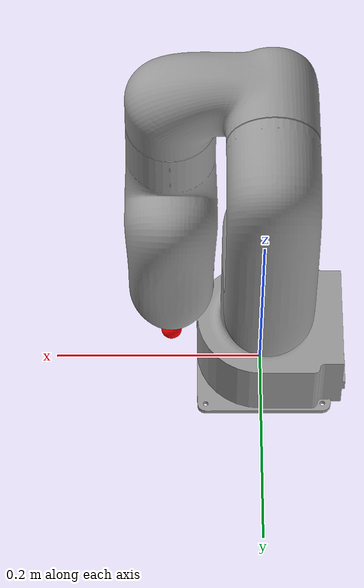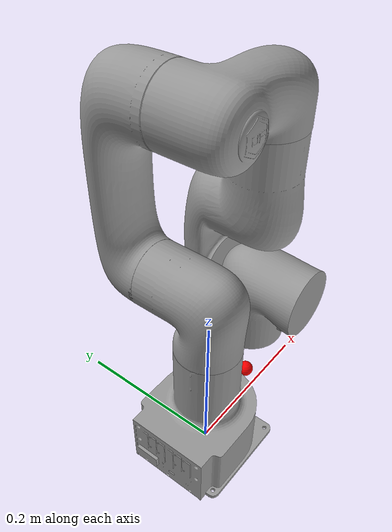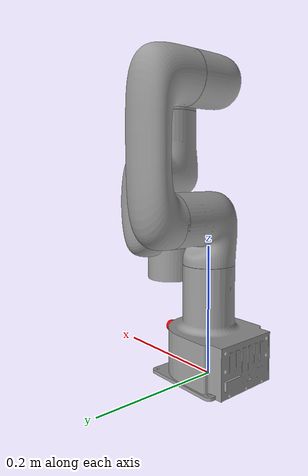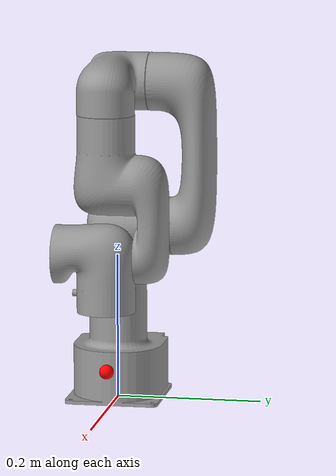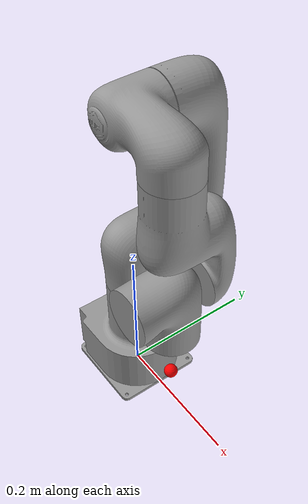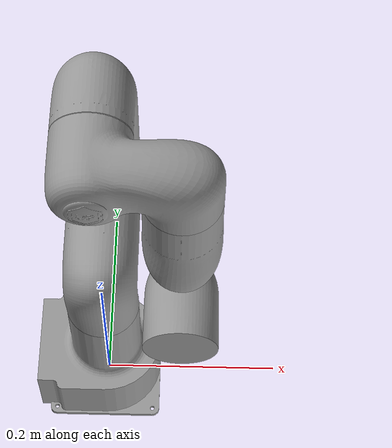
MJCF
<mujoco model="lite6">
  <default>
    <default class="robot">
      <default class="motor">
        <joint stiffness="590" damping="100"/>  <!-- Increased stiffness -->
        <motor ctrlrange="-10 10" ctrllimited="true" forcerange="-500000 500000"/>
      </default>
      <default class="visual">
        <geom material="visualgeom" contype="0" conaffinity="0" group="2" />
      </default>
      <default class="collision">
        <geom material="collision_material" condim="3" contype="0" conaffinity="1" priority="1" group="1" solref="0.005 1" friction="1 0.01 0.01" />
        <equality solimp="0.99 0.999 1e-05" solref="0.005 1" />
      </default>
    </default>
  </default>

  <compiler angle="radian" />

  <option timestep="0.002" gravity="0 0 -9.81"/>

  <asset>
    <material name="default_material" rgba="0.7 0.7 0.7 1" />
    <material name="collision_material" rgba="1.0 0.28 0.1 0.9" />
    <mesh name="xarm_link6_mesh" file="/home/nikola/code/alignit/alignit/mujoco_menagerie/ufactory_lite6/assets/visual/link6.stl"/>
    <mesh name="base_mesh" file="/home/nikola/code/alignit/alignit/mujoco_menagerie/ufactory_lite6/assets/visual/link_base.stl"/>
    <mesh name="link1_mesh" file="/home/nikola/code/alignit/alignit/mujoco_menagerie/ufactory_lite6/assets/visual/link1.stl"/>
    <mesh name="link2_mesh" file="/home/nikola/code/alignit/alignit/mujoco_menagerie/ufactory_lite6/assets/visual/link2.stl"/>
    <mesh name="link3_mesh" file="/home/nikola/code/alignit/alignit/mujoco_menagerie/ufactory_lite6/assets/visual/link3.stl"/>
    <mesh name="link4_mesh" file="/home/nikola/code/alignit/alignit/mujoco_menagerie/ufactory_lite6/assets/visual/link4.stl"/>
    <mesh name="link5_mesh" file="/home/nikola/code/alignit/alignit/mujoco_menagerie/ufactory_lite6/assets/visual/link5.stl"/>
  </asset>

  <worldbody>
    <body name="link_base" pos="0.00000000 0.00000000 0.00000000" quat="1 0 0 0" childclass="robot">
    <geom type="mesh" mesh="base_mesh" rgba="0.6 0.6 0.6 1"/>
      <inertial pos="0 0 0" mass="2.5" diaginertia="0.01 0.01 0.01"/>
      <body name="link1" pos="0 0 0.2435" quat="1.0 0.0 0.0 0.0">
        <geom type="mesh" mesh="link1_mesh" rgba="0.6 0.6 0.6 1"/>
        <joint name="joint1" type="hinge" ref="0.0" class="motor" range="-6.28319 6.28319" axis="0 0 1" />
        <inertial pos="0 0 0" quat="1.0 0.0 0.0 0.0" mass="2.0" diaginertia="1e-05 1e-05 1e-05" />
        <body name="link2" pos="0 0 0" quat="0.5000037354821706 -0.49999840251375804 -0.5000019278969003 -0.4999959340704164">
        <geom type="mesh" mesh="link2_mesh" rgba="0.6 0.6 0.6 1"/>
          <joint name="joint2" type="hinge" ref="0.0" class="motor" range="-2.61799 2.61799" axis="0.000001 0 1" />
          <inertial pos="0 0 0" quat="1.0 0.0 0.0 0.0" mass="1.8" diaginertia="1e-05 1e-05 1e-05" />
          <body name="link3" pos="0.2002 0 0" quat="2.7059462988343167e-06 0.7071051289519305 0.7071084334069488 2.705958944305917e-06">
            <geom type="mesh" mesh="link3_mesh" rgba="0.6 0.6 0.6 1"/>
            <joint name="joint3" type="hinge" ref="0.0" class="motor" range="-0.061087 5.23599" axis="0 -0.000001 1" />
            <inertial pos="0 0 0" quat="1.0 0.0 0.0 0.0" mass="1.2" diaginertia="1e-05 1e-05 1e-05" />
            <body name="link4" pos="0.087 -0.22761 0" quat="0.7071054825112363 0.7071080798594735 0.0 0.0">
            <geom type="mesh" mesh="link4_mesh" rgba="0.6 0.6 0.6 1"/>
              <joint name="joint4" type="hinge" ref="0.0" class="motor" range="-6.28319 6.28319" axis="0 0 1" />
              <inertial pos="0 0 0" quat="1.0 0.0 0.0 0.0" mass="0.7" diaginertia="1e-05 1e-05 1e-05" />
              <body name="link5" pos="0 0 0" quat="0.7071054825112363 0.7071080798594735 0.0 0.0">
              <geom type="mesh" mesh="link1_mesh" rgba="0.6 0.6 0.6 1"/>
                <joint name="joint5" type="hinge" ref="0.0" class="motor" range="-2.1642 2.1642" axis="0 0 1" />
                <inertial pos="0 0 0" quat="1.0 0.0 0.0 0.0" mass="0.2" diaginertia="1e-05 1e-05 1e-05" />
                <body name="link6" pos="0 0.0625 0" quat="0.7071054825112363 -0.7071080798594735 0.0 0.0">
                  <geom type="mesh" mesh="xarm_link6_mesh" rgba="0.6 0.6 0.6 1"/>
                  <joint name="joint6" type="hinge" ref="0.0" class="motor" range="-6.28319 6.28319" axis="0 0 1" />
                    <inertial pos="0 0 0" mass="0.1" diaginertia="0.001 0.001 0.001"/> <site name="gripper_site" pos="0 0 0.1" size="0.01 0.01 0.01" rgba="1 0 0 1"/>
                </body>
              </body>
            </body>
          </body>
        </body>
      </body>
      <site name="link_base_site" pos="0 0 0" quat="1 0 0 0" />
      <camera name="front_camera" mode="track" fovy="90.0" quat="4.329780281177467e-17 4.329780281177466e-17 0.7071067811865475 0.7071067811865476" pos="0.0 2.0 0.5" />
      <camera name="side_camera" mode="track" fovy="90.0" quat="-0.5 -0.4999999999999999 0.5 0.5000000000000001" pos="-2.0 0.0 0.5" />
    </body>
  </worldbody>

  <actuator>
    <motor name="joint1_ctrl" joint="joint1" class="motor" />
    <motor name="joint2_ctrl" joint="joint2" class="motor" />
    <motor name="joint3_ctrl" joint="joint3" class="motor" />
    <motor name="joint4_ctrl" joint="joint4" class="motor" />
    <motor name="joint5_ctrl" joint="joint5" class="motor" />
    <motor name="joint6_ctrl" joint="joint6" class="motor" />
  </actuator>

  <sensor>
    <framepos name="link_base_site_pos" objtype="site" objname="link_base_site" />
    <framequat name="link_base_site_quat" objtype="site" objname="link_base_site" />
    <framelinvel name="link_base_site_linvel" objtype="site" objname="link_base_site" />
    <frameangvel name="link_base_site_angvel" objtype="site" objname="link_base_site" />
    <velocimeter name="link_base_site_vel" site="link_base_site" />
  </sensor>
</mujoco>
